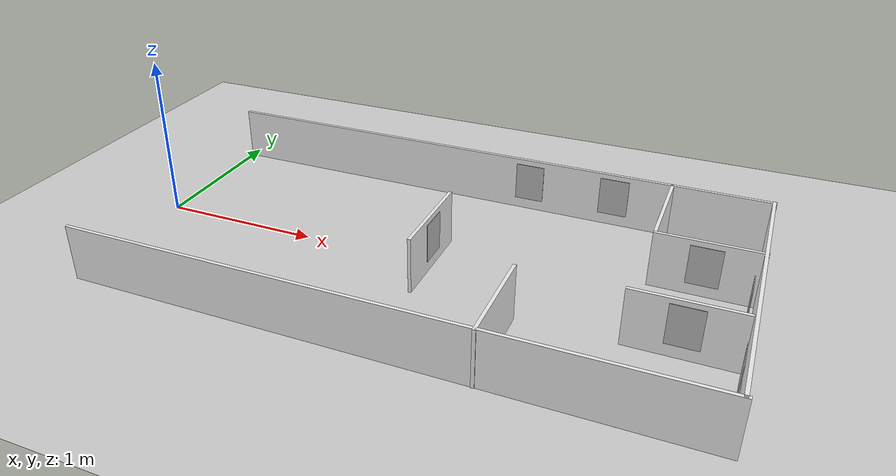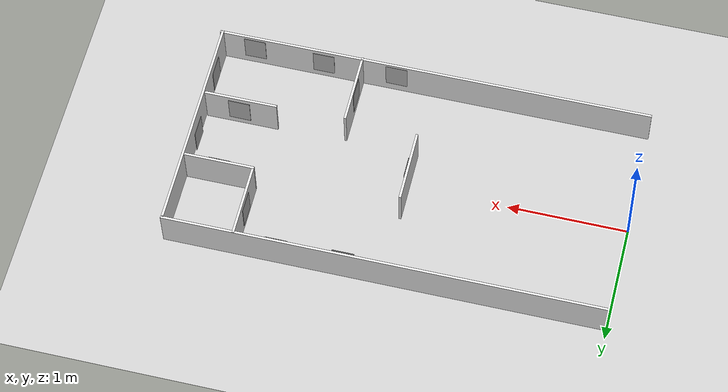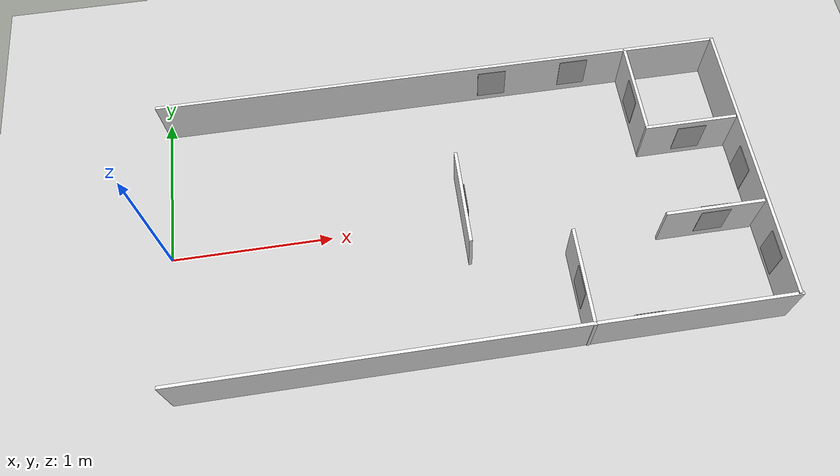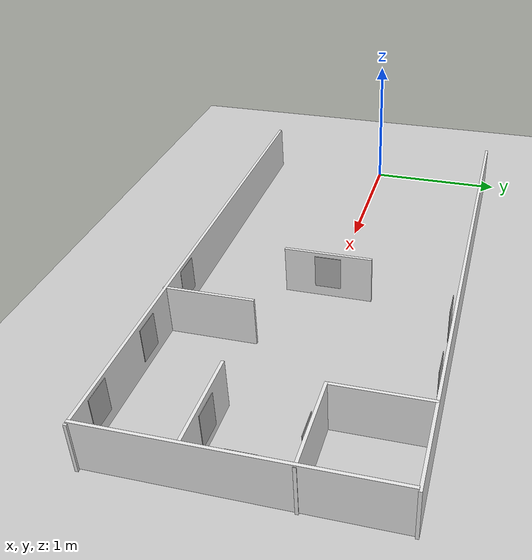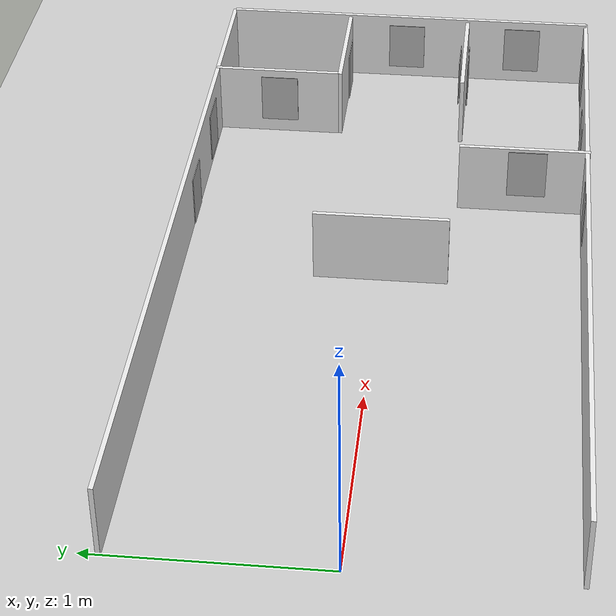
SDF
<sdf version="1.6">
 <world name="default">
  <model name="ground_plane">
   <static>1</static>
   <link name="link">
    <collision name="collision">
     <geometry><plane><normal>0 0 1</normal><size>100 100</size></plane></geometry>
     <surface><friction><ode><mu>100</mu><mu2>50</mu2></ode></friction></surface>
    </collision>
    <visual name="visual">
     <cast_shadows>0</cast_shadows>
     <geometry><plane><normal>0 0 1</normal><size>100 100</size></plane></geometry>
     <material>
      <script><uri>file://media/materials/scripts/gazebo.material</uri><name>Gazebo/Grey</name></script>
     </material>
    </visual>
   </link>
  </model>
  <model name="sign_left2_0">
   <static>1</static>
   <link name="link">
    <pose>0 0 1.4 0 -0 0</pose>
    <visual name="visual">
     <cast_shadows>0</cast_shadows>
     <geometry><box><size>0.003668 0.181404 0.2404</size></box></geometry>
     <material>
      <script>
       <uri>model://sign_left2/materials/scripts</uri>
       <uri>model://sign_left2/materials/textures</uri>
       <name>left2</name>
      </script>
     </material>
    </visual>
   </link>
   <pose>2.42433 -0.639391 -1.18903 0 -0 0</pose>
  </model>
  <model name="sign_left3_0_clone">
   <static>1</static>
   <link name="link">
    <pose>0 0 1.4 0 -0 0</pose>
    <visual name="visual">
     <cast_shadows>0</cast_shadows>
     <geometry><box><size>0.003668 0.181404 0.2404</size></box></geometry>
     <material>
      <script>
       <uri>model://sign_left3/materials/scripts</uri>
       <uri>model://sign_left3/materials/textures</uri>
       <name>left3</name>
      </script>
     </material>
    </visual>
   </link>
   <pose>3.03157 0.606592 -1.21134 0 -0 0</pose>
  </model>
  <model name="sign_stop">
   <static>1</static>
   <link name="link">
    <pose>0 0 1.4 0 -0 0</pose>
    <visual name="visual">
     <cast_shadows>0</cast_shadows>
     <geometry><box><size>0.003668 0.181404 0.2404</size></box></geometry>
     <material>
      <script>
       <uri>model://sign_stop/materials/scripts</uri>
       <uri>model://sign_stop/materials/textures</uri>
       <name>stop</name>
      </script>
     </material>
    </visual>
   </link>
   <pose>3.61069 -0.589683 -1.2 0 -0 0</pose>
  </model>
  <model name="sign_right1_0">
   <static>1</static>
   <link name="link">
    <pose>0 0 1.4 0 -0 0</pose>
    <visual name="visual">
     <cast_shadows>0</cast_shadows>
     <geometry><box><size>0.003668 0.181404 0.2404</size></box></geometry>
     <material>
      <script>
       <uri>model://sign_right1/materials/scripts</uri>
       <uri>model://sign_right1/materials/textures</uri>
       <name>right1</name>
      </script>
     </material>
    </visual>
   </link>
   <pose>1.84698 0.000934 -1.2 0 -0 0</pose>
  </model>
  <model name="sign_left1">
   <static>1</static>
   <link name="link">
    <pose>0 0 1.4 0 -0 0</pose>
    <visual name="visual">
     <cast_shadows>0</cast_shadows>
     <geometry><box><size>0.003668 0.181404 0.2404</size></box></geometry>
     <material>
      <script>
       <uri>model://sign_left1/materials/scripts</uri>
       <uri>model://sign_left1/materials/textures</uri>
       <name>left1</name>
      </script>
     </material>
    </visual>
   </link>
   <pose>3.59571 0.007617 -1.2 0 -0 0</pose>
  </model>
  <model name="sign_left1_0">
   <static>1</static>
   <link name="link">
    <pose>0 0 1.4 0 -0 0</pose>
    <visual name="visual">
     <cast_shadows>0</cast_shadows>
     <geometry><box><size>0.003668 0.181404 0.2404</size></box></geometry>
     <material>
      <script>
       <uri>model://sign_left1/materials/scripts</uri>
       <uri>model://sign_left1/materials/textures</uri>
       <name>left1</name>
      </script>
     </material>
    </visual>
   </link>
   <pose>2.14464 -0.904127 -1.2 0 0 -1.58148</pose>
  </model>
  <model name="sign_right1_2">
   <static>1</static>
   <link name="link">
    <pose>0 0 1.4 0 -0 0</pose>
    <visual name="visual">
     <cast_shadows>0</cast_shadows>
     <geometry><box><size>0.003668 0.181404 0.2404</size></box></geometry>
     <material>
      <script>
       <uri>model://sign_right1/materials/scripts</uri>
       <uri>model://sign_right1/materials/textures</uri>
       <name>right1</name>
      </script>
     </material>
    </visual>
   </link>
   <pose>3.32829 -0.281957 -1.2 0 0 -1.58148</pose>
  </model>
  <model name="sign_left1_1">
   <static>1</static>
   <link name="link">
    <pose>0 0 1.4 0 -0 0</pose>
    <visual name="visual">
     <cast_shadows>0</cast_shadows>
     <geometry><box><size>0.003668 0.181404 0.2404</size></box></geometry>
     <material>
      <script>
       <uri>model://sign_left1/materials/scripts</uri>
       <uri>model://sign_left1/materials/textures</uri>
       <name>left1</name>
      </script>
     </material>
    </visual>
   </link>
   <pose>3.33719 0.27785 -1.2 0 -0 1.57</pose>
  </model>
  <model name="12ft_white_wall_0">
   <link name="link_0">
    <inertial>
     <mass>0.0175997</mass>
     <inertia>
      <ixx>0.00164239</ixx>
      <ixy>0</ixy>
      <ixz>0</ixz>
      <iyy>0.00017954</iyy>
      <iyz>0</iyz>
      <izz>0.00147044</izz>
     </inertia>
    </inertial>
    <visual name="visual">
     <geometry><box><size>0.02 3.6576 0.346159</size></box></geometry>
     <material>
      <lighting>1</lighting>
      <script><uri>file://media/materials/scripts/gazebo.material</uri><name>Gazebo/White</name></script>
      <ambient>1 1 1 1</ambient>
      <diffuse>1 1 1 1</diffuse>
      <specular>0.01 0.01 0.01 1</specular>
      <emissive>0 0 0 1</emissive>
      <shader type="vertex"><normal_map>__default__</normal_map></shader>
     </material>
    </visual>
    <collision name="collision">
     <geometry><box><size>0.050867 3.6576 0.346159</size></box></geometry>
     <surface>
      <friction>
       <ode><mu>1</mu><mu2>1</mu2><fdir1>0 0 0</fdir1><slip1>0</slip1><slip2>0</slip2></ode>
       <torsional>
        <coefficient>1</coefficient>
        <patch_radius>0</patch_radius>
        <surface_radius>0</surface_radius>
        <use_patch_radius>1</use_patch_radius>
        <ode><slip>0</slip></ode>
       </torsional>
      </friction>
      <bounce><restitution_coefficient>0</restitution_coefficient><threshold>1e+06</threshold></bounce>
      <contact>
       <collide_without_contact>0</collide_without_contact>
       <collide_without_contact_bitmask>1</collide_without_contact_bitmask>
       <collide_bitmask>1</collide_bitmask>
       <ode>
        <soft_cfm>0</soft_cfm>
        <soft_erp>0.2</soft_erp>
        <kp>1e+13</kp>
        <kd>1</kd>
        <max_vel>0.01</max_vel>
        <min_depth>0</min_depth>
       </ode>
       <bullet>
        <split_impulse>1</split_impulse>
        <split_impulse_penetration_threshold>-0.01</split_impulse_penetration_threshold>
        <soft_cfm>0</soft_cfm>
        <soft_erp>0.2</soft_erp>
        <kp>1e+13</kp>
        <kd>1</kd>
       </bullet>
      </contact>
     </surface>
    </collision>
   </link>
   <static>1</static>
   <pose>1.8213 0.917001 0.172001 0 -0 1.5708</pose>
  </model>
  <model name="2ft_white_wall">
   <link name="link_0">
    <inertial>
     <mass>0.0175997</mass>
     <inertia>
      <ixx>0.00164239</ixx>
      <ixy>0</ixy>
      <ixz>0</ixz>
      <iyy>0.00017954</iyy>
      <iyz>0</iyz>
      <izz>0.00147044</izz>
     </inertia>
    </inertial>
    <visual name="visual">
     <geometry><box><size>0.02 0.6096 0.346159</size></box></geometry>
     <material>
      <lighting>1</lighting>
      <script><uri>file://media/materials/scripts/gazebo.material</uri><name>Gazebo/White</name></script>
      <ambient>1 1 1 1</ambient>
      <diffuse>1 1 1 1</diffuse>
      <specular>0.01 0.01 0.01 1</specular>
      <emissive>0 0 0 1</emissive>
      <shader type="vertex"><normal_map>__default__</normal_map></shader>
     </material>
    </visual>
    <collision name="collision">
     <geometry><box><size>0.02 0.6096 0.346159</size></box></geometry>
     <surface>
      <friction>
       <ode><mu>1</mu><mu2>1</mu2><fdir1>0 0 0</fdir1><slip1>0</slip1><slip2>0</slip2></ode>
       <torsional>
        <coefficient>1</coefficient>
        <patch_radius>0</patch_radius>
        <surface_radius>0</surface_radius>
        <use_patch_radius>1</use_patch_radius>
        <ode><slip>0</slip></ode>
       </torsional>
      </friction>
      <bounce><restitution_coefficient>0</restitution_coefficient><threshold>1e+06</threshold></bounce>
      <contact>
       <collide_without_contact>0</collide_without_contact>
       <collide_without_contact_bitmask>1</collide_without_contact_bitmask>
       <collide_bitmask>1</collide_bitmask>
       <ode>
        <soft_cfm>0</soft_cfm>
        <soft_erp>0.2</soft_erp>
        <kp>1e+13</kp>
        <kd>1</kd>
        <max_vel>0.01</max_vel>
        <min_depth>0</min_depth>
       </ode>
       <bullet>
        <split_impulse>1</split_impulse>
        <split_impulse_penetration_threshold>-0.01</split_impulse_penetration_threshold>
        <soft_cfm>0</soft_cfm>
        <soft_erp>0.2</soft_erp>
        <kp>1e+13</kp>
        <kd>1</kd>
       </bullet>
      </contact>
     </surface>
    </collision>
   </link>
   <static>1</static>
   <pose>2.4384 -0.623872 0.172001 0 -0 0</pose>
  </model>
  <model name="6ft_white_wall_clone">
   <link name="link_0">
    <inertial>
     <mass>0.0175997</mass>
     <inertia>
      <ixx>0.00164239</ixx>
      <ixy>0</ixy>
      <ixz>0</ixz>
      <iyy>0.00017954</iyy>
      <iyz>0</iyz>
      <izz>0.00147044</izz>
     </inertia>
    </inertial>
    <visual name="visual">
     <geometry><box><size>0.02 1.8288 0.346159</size></box></geometry>
     <material>
      <lighting>1</lighting>
      <script><uri>file://media/materials/scripts/gazebo.material</uri><name>Gazebo/White</name></script>
      <ambient>1 1 1 1</ambient>
      <diffuse>1 1 1 1</diffuse>
      <specular>0.01 0.01 0.01 1</specular>
      <emissive>0 0 0 1</emissive>
      <shader type="vertex"><normal_map>__default__</normal_map></shader>
     </material>
    </visual>
    <collision name="collision">
     <geometry><box><size>0.050867 1.8288 0.346159</size></box></geometry>
     <surface>
      <friction>
       <ode><mu>1</mu><mu2>1</mu2><fdir1>0 0 0</fdir1><slip1>0</slip1><slip2>0</slip2></ode>
       <torsional>
        <coefficient>1</coefficient>
        <patch_radius>0</patch_radius>
        <surface_radius>0</surface_radius>
        <use_patch_radius>1</use_patch_radius>
        <ode><slip>0</slip></ode>
       </torsional>
      </friction>
      <bounce><restitution_coefficient>0</restitution_coefficient><threshold>1e+06</threshold></bounce>
      <contact>
       <collide_without_contact>0</collide_without_contact>
       <collide_without_contact_bitmask>1</collide_without_contact_bitmask>
       <collide_bitmask>1</collide_bitmask>
       <ode>
        <soft_cfm>0</soft_cfm>
        <soft_erp>0.2</soft_erp>
        <kp>1e+13</kp>
        <kd>1</kd>
        <max_vel>0.01</max_vel>
        <min_depth>0</min_depth>
       </ode>
       <bullet>
        <split_impulse>1</split_impulse>
        <split_impulse_penetration_threshold>-0.01</split_impulse_penetration_threshold>
        <soft_cfm>0</soft_cfm>
        <soft_erp>0.2</soft_erp>
        <kp>1e+13</kp>
        <kd>1</kd>
       </bullet>
      </contact>
     </surface>
    </collision>
   </link>
   <static>1</static>
   <pose>3.63512 -0.003611 0.182455 0 -0 0</pose>
  </model>
  <model name="12ft_white_wall_0_clone">
   <link name="link_0">
    <inertial>
     <mass>0.0175997</mass>
     <inertia>
      <ixx>0.00164239</ixx>
      <ixy>0</ixy>
      <ixz>0</ixz>
      <iyy>0.00017954</iyy>
      <iyz>0</iyz>
      <izz>0.00147044</izz>
     </inertia>
    </inertial>
    <visual name="visual">
     <geometry><box><size>0.02 3.6576 0.346159</size></box></geometry>
     <material>
      <lighting>1</lighting>
      <script><uri>file://media/materials/scripts/gazebo.material</uri><name>Gazebo/White</name></script>
      <ambient>1 1 1 1</ambient>
      <diffuse>1 1 1 1</diffuse>
      <specular>0.01 0.01 0.01 1</specular>
      <emissive>0 0 0 1</emissive>
      <shader type="vertex"><normal_map>__default__</normal_map></shader>
     </material>
    </visual>
    <collision name="collision">
     <geometry><box><size>0.050867 3.6576 0.346159</size></box></geometry>
     <surface>
      <friction>
       <ode><mu>1</mu><mu2>1</mu2><fdir1>0 0 0</fdir1><slip1>0</slip1><slip2>0</slip2></ode>
       <torsional>
        <coefficient>1</coefficient>
        <patch_radius>0</patch_radius>
        <surface_radius>0</surface_radius>
        <use_patch_radius>1</use_patch_radius>
        <ode><slip>0</slip></ode>
       </torsional>
      </friction>
      <bounce><restitution_coefficient>0</restitution_coefficient><threshold>1e+06</threshold></bounce>
      <contact>
       <collide_without_contact>0</collide_without_contact>
       <collide_without_contact_bitmask>1</collide_without_contact_bitmask>
       <collide_bitmask>1</collide_bitmask>
       <ode>
        <soft_cfm>0</soft_cfm>
        <soft_erp>0.2</soft_erp>
        <kp>1e+13</kp>
        <kd>1</kd>
        <max_vel>0.01</max_vel>
        <min_depth>0</min_depth>
       </ode>
       <bullet>
        <split_impulse>1</split_impulse>
        <split_impulse_penetration_threshold>-0.01</split_impulse_penetration_threshold>
        <soft_cfm>0</soft_cfm>
        <soft_erp>0.2</soft_erp>
        <kp>1e+13</kp>
        <kd>1</kd>
       </bullet>
      </contact>
     </surface>
    </collision>
   </link>
   <static>1</static>
   <pose>1.8288 -0.9144 0.172001 0 -0 1.5708</pose>
  </model>
  <model name="2ft_white_wall_clone">
   <link name="link_0">
    <inertial>
     <mass>0.0175997</mass>
     <inertia>
      <ixx>0.00164239</ixx>
      <ixy>0</ixy>
      <ixz>0</ixz>
      <iyy>0.00017954</iyy>
      <iyz>0</iyz>
      <izz>0.00147044</izz>
     </inertia>
    </inertial>
    <visual name="visual">
     <geometry><box><size>0.02 0.6096 0.346159</size></box></geometry>
     <material>
      <lighting>1</lighting>
      <script><uri>file://media/materials/scripts/gazebo.material</uri><name>Gazebo/White</name></script>
      <ambient>1 1 1 1</ambient>
      <diffuse>1 1 1 1</diffuse>
      <specular>0.01 0.01 0.01 1</specular>
      <emissive>0 0 0 1</emissive>
      <shader type="vertex"><normal_map>__default__</normal_map></shader>
     </material>
    </visual>
    <collision name="collision">
     <geometry><box><size>0.02 0.6096 0.346159</size></box></geometry>
     <surface>
      <friction>
       <ode><mu>1</mu><mu2>1</mu2><fdir1>0 0 0</fdir1><slip1>0</slip1><slip2>0</slip2></ode>
       <torsional>
        <coefficient>1</coefficient>
        <patch_radius>0</patch_radius>
        <surface_radius>0</surface_radius>
        <use_patch_radius>1</use_patch_radius>
        <ode><slip>0</slip></ode>
       </torsional>
      </friction>
      <bounce><restitution_coefficient>0</restitution_coefficient><threshold>1e+06</threshold></bounce>
      <contact>
       <collide_without_contact>0</collide_without_contact>
       <collide_without_contact_bitmask>1</collide_without_contact_bitmask>
       <collide_bitmask>1</collide_bitmask>
       <ode>
        <soft_cfm>0</soft_cfm>
        <soft_erp>0.2</soft_erp>
        <kp>1e+13</kp>
        <kd>1</kd>
        <max_vel>0.01</max_vel>
        <min_depth>0</min_depth>
       </ode>
       <bullet>
        <split_impulse>1</split_impulse>
        <split_impulse_penetration_threshold>-0.01</split_impulse_penetration_threshold>
        <soft_cfm>0</soft_cfm>
        <soft_erp>0.2</soft_erp>
        <kp>1e+13</kp>
        <kd>1</kd>
       </bullet>
      </contact>
     </surface>
    </collision>
   </link>
   <static>1</static>
   <pose>3.3159 -0.3048 0.172001 0 -0 1.5708</pose>
  </model>
  <model name="2ft_white_wall_clone_0">
   <link name="link_0">
    <inertial>
     <mass>0.0175997</mass>
     <inertia>
      <ixx>0.00164239</ixx>
      <ixy>0</ixy>
      <ixz>0</ixz>
      <iyy>0.00017954</iyy>
      <iyz>0</iyz>
      <izz>0.00147044</izz>
     </inertia>
    </inertial>
    <visual name="visual">
     <geometry><box><size>0.02 0.6096 0.346159</size></box></geometry>
     <material>
      <lighting>1</lighting>
      <script><uri>file://media/materials/scripts/gazebo.material</uri><name>Gazebo/White</name></script>
      <ambient>1 1 1 1</ambient>
      <diffuse>1 1 1 1</diffuse>
      <specular>0.01 0.01 0.01 1</specular>
      <emissive>0 0 0 1</emissive>
      <shader type="vertex"><normal_map>__default__</normal_map></shader>
     </material>
    </visual>
    <collision name="collision">
     <geometry><box><size>0.02 0.6096 0.346159</size></box></geometry>
     <surface>
      <friction>
       <ode><mu>1</mu><mu2>1</mu2><fdir1>0 0 0</fdir1><slip1>0</slip1><slip2>0</slip2></ode>
       <torsional>
        <coefficient>1</coefficient>
        <patch_radius>0</patch_radius>
        <surface_radius>0</surface_radius>
        <use_patch_radius>1</use_patch_radius>
        <ode><slip>0</slip></ode>
       </torsional>
      </friction>
      <bounce><restitution_coefficient>0</restitution_coefficient><threshold>1e+06</threshold></bounce>
      <contact>
       <collide_without_contact>0</collide_without_contact>
       <collide_without_contact_bitmask>1</collide_without_contact_bitmask>
       <collide_bitmask>1</collide_bitmask>
       <ode>
        <soft_cfm>0</soft_cfm>
        <soft_erp>0.2</soft_erp>
        <kp>1e+13</kp>
        <kd>1</kd>
        <max_vel>0.01</max_vel>
        <min_depth>0</min_depth>
       </ode>
       <bullet>
        <split_impulse>1</split_impulse>
        <split_impulse_penetration_threshold>-0.01</split_impulse_penetration_threshold>
        <soft_cfm>0</soft_cfm>
        <soft_erp>0.2</soft_erp>
        <kp>1e+13</kp>
        <kd>1</kd>
       </bullet>
      </contact>
     </surface>
    </collision>
   </link>
   <static>1</static>
   <pose>1.8288 0 0.172001 0 -0 0</pose>
  </model>
  <model name="2ft_white_wall_clone_2">
   <link name="link_0">
    <inertial>
     <mass>0.0175997</mass>
     <inertia>
      <ixx>0.00164239</ixx>
      <ixy>0</ixy>
      <ixz>0</ixz>
      <iyy>0.00017954</iyy>
      <iyz>0</iyz>
      <izz>0.00147044</izz>
     </inertia>
    </inertial>
    <visual name="visual">
     <geometry><box><size>0.02 0.6096 0.346159</size></box></geometry>
     <material>
      <lighting>1</lighting>
      <script><uri>file://media/materials/scripts/gazebo.material</uri><name>Gazebo/White</name></script>
      <ambient>1 1 1 1</ambient>
      <diffuse>1 1 1 1</diffuse>
      <specular>0.01 0.01 0.01 1</specular>
      <emissive>0 0 0 1</emissive>
      <shader type="vertex"><normal_map>__default__</normal_map></shader>
     </material>
    </visual>
    <collision name="collision">
     <geometry><box><size>0.02 0.6096 0.346159</size></box></geometry>
     <surface>
      <friction>
       <ode><mu>1</mu><mu2>1</mu2><fdir1>0 0 0</fdir1><slip1>0</slip1><slip2>0</slip2></ode>
       <torsional>
        <coefficient>1</coefficient>
        <patch_radius>0</patch_radius>
        <surface_radius>0</surface_radius>
        <use_patch_radius>1</use_patch_radius>
        <ode><slip>0</slip></ode>
       </torsional>
      </friction>
      <bounce><restitution_coefficient>0</restitution_coefficient><threshold>1e+06</threshold></bounce>
      <contact>
       <collide_without_contact>0</collide_without_contact>
       <collide_without_contact_bitmask>1</collide_without_contact_bitmask>
       <collide_bitmask>1</collide_bitmask>
       <ode>
        <soft_cfm>0</soft_cfm>
        <soft_erp>0.2</soft_erp>
        <kp>1e+13</kp>
        <kd>1</kd>
        <max_vel>0.01</max_vel>
        <min_depth>0</min_depth>
       </ode>
       <bullet>
        <split_impulse>1</split_impulse>
        <split_impulse_penetration_threshold>-0.01</split_impulse_penetration_threshold>
        <soft_cfm>0</soft_cfm>
        <soft_erp>0.2</soft_erp>
        <kp>1e+13</kp>
        <kd>1</kd>
       </bullet>
      </contact>
     </surface>
    </collision>
   </link>
   <static>1</static>
   <pose>3.048 0.61726 0.172001 0 -0 0</pose>
  </model>
  <model name="2ft_white_wall_clone_clone">
   <link name="link_0">
    <inertial>
     <mass>0.0175997</mass>
     <inertia>
      <ixx>0.00164239</ixx>
      <ixy>0</ixy>
      <ixz>0</ixz>
      <iyy>0.00017954</iyy>
      <iyz>0</iyz>
      <izz>0.00147044</izz>
     </inertia>
    </inertial>
    <visual name="visual">
     <geometry><box><size>0.02 0.6096 0.346159</size></box></geometry>
     <material>
      <lighting>1</lighting>
      <script><uri>file://media/materials/scripts/gazebo.material</uri><name>Gazebo/White</name></script>
      <ambient>1 1 1 1</ambient>
      <diffuse>1 1 1 1</diffuse>
      <specular>0.01 0.01 0.01 1</specular>
      <emissive>0 0 0 1</emissive>
      <shader type="vertex"><normal_map>__default__</normal_map></shader>
     </material>
    </visual>
    <collision name="collision">
     <geometry><box><size>0.02 0.6096 0.346159</size></box></geometry>
     <surface>
      <friction>
       <ode><mu>1</mu><mu2>1</mu2><fdir1>0 0 0</fdir1><slip1>0</slip1><slip2>0</slip2></ode>
       <torsional>
        <coefficient>1</coefficient>
        <patch_radius>0</patch_radius>
        <surface_radius>0</surface_radius>
        <use_patch_radius>1</use_patch_radius>
        <ode><slip>0</slip></ode>
       </torsional>
      </friction>
      <bounce><restitution_coefficient>0</restitution_coefficient><threshold>1e+06</threshold></bounce>
      <contact>
       <collide_without_contact>0</collide_without_contact>
       <collide_without_contact_bitmask>1</collide_without_contact_bitmask>
       <collide_bitmask>1</collide_bitmask>
       <ode>
        <soft_cfm>0</soft_cfm>
        <soft_erp>0.2</soft_erp>
        <kp>1e+13</kp>
        <kd>1</kd>
        <max_vel>0.01</max_vel>
        <min_depth>0</min_depth>
       </ode>
       <bullet>
        <split_impulse>1</split_impulse>
        <split_impulse_penetration_threshold>-0.01</split_impulse_penetration_threshold>
        <soft_cfm>0</soft_cfm>
        <soft_erp>0.2</soft_erp>
        <kp>1e+13</kp>
        <kd>1</kd>
       </bullet>
      </contact>
     </surface>
    </collision>
   </link>
   <static>1</static>
   <pose>3.34367 0.3048 0.172001 0 -0 1.5708</pose>
  </model>
  <model name="sign_left2_2">
   <static>1</static>
   <link name="link">
    <pose>0 0 1.4 0 -0 0</pose>
    <visual name="visual">
     <cast_shadows>0</cast_shadows>
     <geometry><box><size>0.003668 0.181404 0.2404</size></box></geometry>
     <material>
      <script>
       <uri>model://sign_left2/materials/scripts</uri>
       <uri>model://sign_left2/materials/textures</uri>
       <name>left2</name>
      </script>
     </material>
    </visual>
   </link>
   <pose>2.70273 0.890645 -1.2 0 -0 1.57</pose>
  </model>
  <model name="sign_left1_2">
   <static>1</static>
   <link name="link">
    <pose>0 0 1.4 0 -0 0</pose>
    <visual name="visual">
     <cast_shadows>0</cast_shadows>
     <geometry><box><size>0.003668 0.181404 0.2404</size></box></geometry>
     <material>
      <script>
       <uri>model://sign_left1/materials/scripts</uri>
       <uri>model://sign_left1/materials/textures</uri>
       <name>left1</name>
      </script>
     </material>
    </visual>
   </link>
   <pose>2.15551 0.883234 -1.2 0 -0 1.57</pose>
  </model>
  <model name="sign_left2_3">
   <static>1</static>
   <link name="link">
    <pose>0 0 1.4 0 -0 0</pose>
    <visual name="visual">
     <cast_shadows>0</cast_shadows>
     <geometry><box><size>0.003668 0.181404 0.2404</size></box></geometry>
     <material>
      <script>
       <uri>model://sign_left2/materials/scripts</uri>
       <uri>model://sign_left2/materials/textures</uri>
       <name>left2</name>
      </script>
     </material>
    </visual>
   </link>
   <pose>3.32103 -0.323793 -1.2 0 -0 1.57</pose>
  </model>
  <model name="sign_right1_5">
   <static>1</static>
   <link name="link">
    <pose>0 0 1.4 0 -0 0</pose>
    <visual name="visual">
     <cast_shadows>0</cast_shadows>
     <geometry><box><size>0.003668 0.181404 0.2404</size></box></geometry>
     <material>
      <script>
       <uri>model://sign_right1/materials/scripts</uri>
       <uri>model://sign_right1/materials/textures</uri>
       <name>right1</name>
      </script>
     </material>
    </visual>
   </link>
   <pose>2.76475 -0.892988 -1.2 0 -0 1.57</pose>
  </model>
  <model name="sign_right3_2">
   <static>1</static>
   <link name="link">
    <pose>0 0 1.4 0 -0 0</pose>
    <visual name="visual">
     <cast_shadows>0</cast_shadows>
     <geometry><box><size>0.003668 0.181404 0.2404</size></box></geometry>
     <material>
      <script>
       <uri>model://sign_right3/materials/scripts</uri>
       <uri>model://sign_right3/materials/textures</uri>
       <name>right3</name>
      </script>
     </material>
    </visual>
   </link>
   <pose>3.35852 -0.901558 -1.2 0 -0 1.57</pose>
  </model>
 </world>
</sdf>
